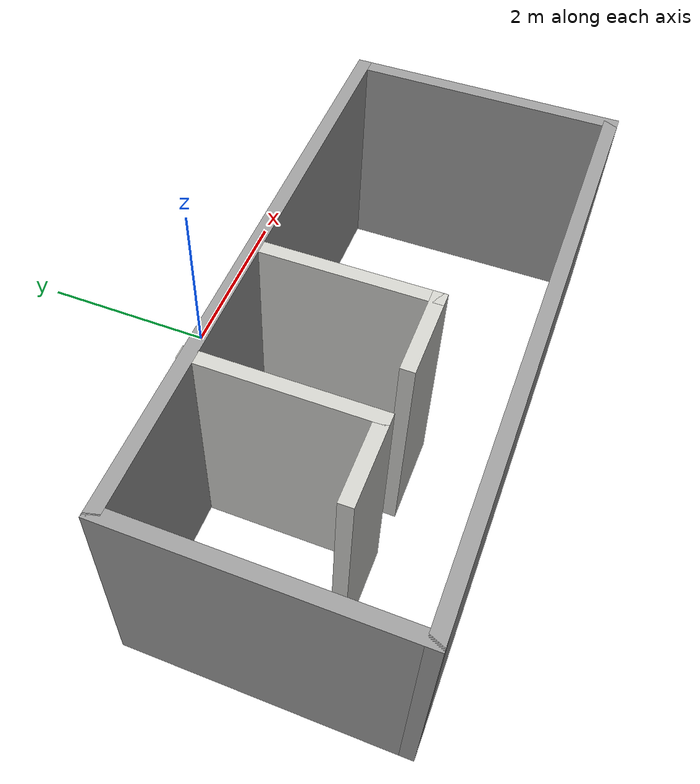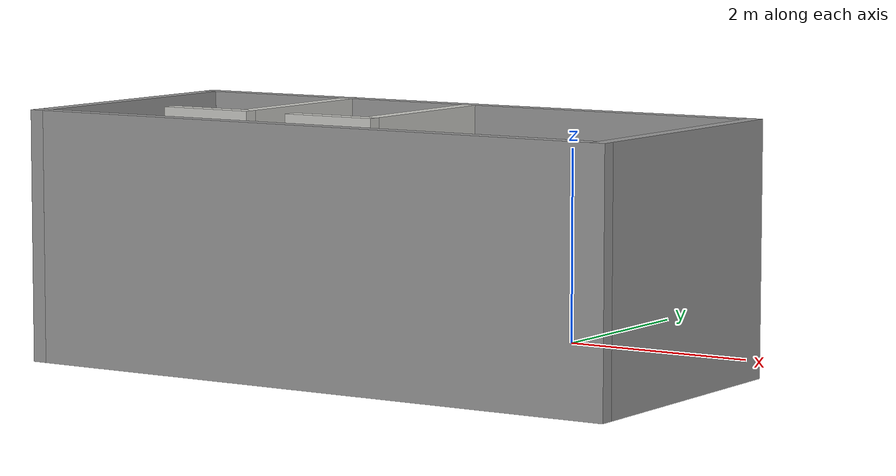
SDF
<?xml version='1.0'?>
<sdf version='1.7'>
  <model name='house'>
    <pose>-0.585 -1.9875 0 0 -0 0</pose>
    <link name='Wall_0'>
      <collision name='Wall_0_Collision'>
        <geometry>
          <box>
            <size>6.5 0.15 2.5</size>
          </box>
        </geometry>
        <pose>0 0 1.25 0 -0 0</pose>
      </collision>
      <visual name='Wall_0_Visual'>
        <pose>0 0 1.25 0 -0 0</pose>
        <geometry>
          <box>
            <size>6.5 0.15 2.5</size>
          </box>
        </geometry>
        <material>
          <script>
            <uri>file://media/materials/scripts/gazebo.material</uri>
            <name>Gazebo/Grey</name>
          </script>
          <ambient>1 1 1 1</ambient>
        </material>
        <meta>
          <layer>0</layer>
        </meta>
      </visual>
      <pose>0 0.9375 0 0 -0 0</pose>
    </link>
    <link name='Wall_1'>
      <collision name='Wall_1_Collision'>
        <geometry>
          <box>
            <size>3 0.15 2.5</size>
          </box>
        </geometry>
        <pose>0 0 1.25 0 -0 0</pose>
      </collision>
      <visual name='Wall_1_Visual'>
        <pose>0 0 1.25 0 -0 0</pose>
        <geometry>
          <box>
            <size>3 0.15 2.5</size>
          </box>
        </geometry>
        <material>
          <script>
            <uri>file://media/materials/scripts/gazebo.material</uri>
            <name>Gazebo/Grey</name>
          </script>
          <ambient>1 1 1 1</ambient>
        </material>
        <meta>
          <layer>0</layer>
        </meta>
      </visual>
      <pose>3.175 -0.4875 0 0 -0 -1.5708</pose>
    </link>
    <link name='Wall_10'>
      <collision name='Wall_10_Collision'>
        <geometry>
          <box>
            <size>2 0.15 2.5</size>
          </box>
        </geometry>
        <pose>0 0 1.25 0 -0 0</pose>
      </collision>
      <visual name='Wall_10_Visual'>
        <pose>0 0 1.25 0 -0 0</pose>
        <geometry>
          <box>
            <size>2 0.15 2.5</size>
          </box>
        </geometry>
        <material>
          <script>
            <uri>file://media/materials/scripts/gazebo.material</uri>
            <name>Gazebo/CeilingTiled</name>
          </script>
          <ambient>1 1 1 1</ambient>
        </material>
        <meta>
          <layer>0</layer>
        </meta>
      </visual>
      <pose>0.035 -0.0075 0 0 -0 -1.5708</pose>
    </link>
    <link name='Wall_11'>
      <collision name='Wall_11_Collision'>
        <geometry>
          <box>
            <size>1 0.15 2.5</size>
          </box>
        </geometry>
        <pose>0 0 1.25 0 -0 0</pose>
      </collision>
      <visual name='Wall_11_Visual'>
        <pose>0 0 1.25 0 -0 0</pose>
        <geometry>
          <box>
            <size>1 0.15 2.5</size>
          </box>
        </geometry>
        <material>
          <script>
            <uri>file://media/materials/scripts/gazebo.material</uri>
            <name>Gazebo/CeilingTiled</name>
          </script>
          <ambient>1 1 1 1</ambient>
        </material>
        <meta>
          <layer>0</layer>
        </meta>
      </visual>
      <pose>-0.39 -0.9325 0 0 -0 3.14159</pose>
    </link>
    <link name='Wall_2'>
      <collision name='Wall_2_Collision'>
        <geometry>
          <box>
            <size>6.5 0.15 2.5</size>
          </box>
        </geometry>
        <pose>0 0 1.25 0 -0 0</pose>
      </collision>
      <visual name='Wall_2_Visual'>
        <pose>0 0 1.25 0 -0 0</pose>
        <geometry>
          <box>
            <size>6.5 0.15 2.5</size>
          </box>
        </geometry>
        <material>
          <script>
            <uri>file://media/materials/scripts/gazebo.material</uri>
            <name>Gazebo/Grey</name>
          </script>
          <ambient>1 1 1 1</ambient>
        </material>
        <meta>
          <layer>0</layer>
        </meta>
      </visual>
      <pose>0 -1.9125 0 0 -0 3.14159</pose>
    </link>
    <link name='Wall_3'>
      <collision name='Wall_3_Collision'>
        <geometry>
          <box>
            <size>3 0.15 2.5</size>
          </box>
        </geometry>
        <pose>0 0 1.25 0 -0 0</pose>
      </collision>
      <visual name='Wall_3_Visual'>
        <pose>0 0 1.25 0 -0 0</pose>
        <geometry>
          <box>
            <size>3 0.15 2.5</size>
          </box>
        </geometry>
        <material>
          <script>
            <uri>file://media/materials/scripts/gazebo.material</uri>
            <name>Gazebo/Grey</name>
          </script>
          <ambient>1 1 1 1</ambient>
        </material>
        <meta>
          <layer>0</layer>
        </meta>
      </visual>
      <pose>-3.175 -0.4875 0 0 -0 1.5708</pose>
    </link>
    <link name='Wall_5'>
      <collision name='Wall_5_Collision'>
        <geometry>
          <box>
            <size>2 0.15 2.5</size>
          </box>
        </geometry>
        <pose>0 0 1.25 0 -0 0</pose>
      </collision>
      <visual name='Wall_5_Visual'>
        <pose>0 0 1.25 0 -0 0</pose>
        <geometry>
          <box>
            <size>2 0.15 2.5</size>
          </box>
        </geometry>
        <material>
          <script>
            <uri>file://media/materials/scripts/gazebo.material</uri>
            <name>Gazebo/CeilingTiled</name>
          </script>
          <ambient>1 1 1 1</ambient>
        </material>
        <meta>
          <layer>0</layer>
        </meta>
      </visual>
      <pose>-1.445 0.0225 0 0 -0 -1.5708</pose>
    </link>
    <link name='Wall_6'>
      <collision name='Wall_6_Collision'>
        <geometry>
          <box>
            <size>1 0.15 2.5</size>
          </box>
        </geometry>
        <pose>0 0 1.25 0 -0 0</pose>
      </collision>
      <visual name='Wall_6_Visual'>
        <pose>0 0 1.25 0 -0 0</pose>
        <geometry>
          <box>
            <size>1 0.15 2.5</size>
          </box>
        </geometry>
        <material>
          <script>
            <uri>file://media/materials/scripts/gazebo.material</uri>
            <name>Gazebo/CeilingTiled</name>
          </script>
          <ambient>1 1 1 1</ambient>
        </material>
        <meta>
          <layer>0</layer>
        </meta>
      </visual>
      <pose>-1.87 -0.9025 0 0 -0 3.14159</pose>
    </link>
    <static>1</static>
  </model>
</sdf>
